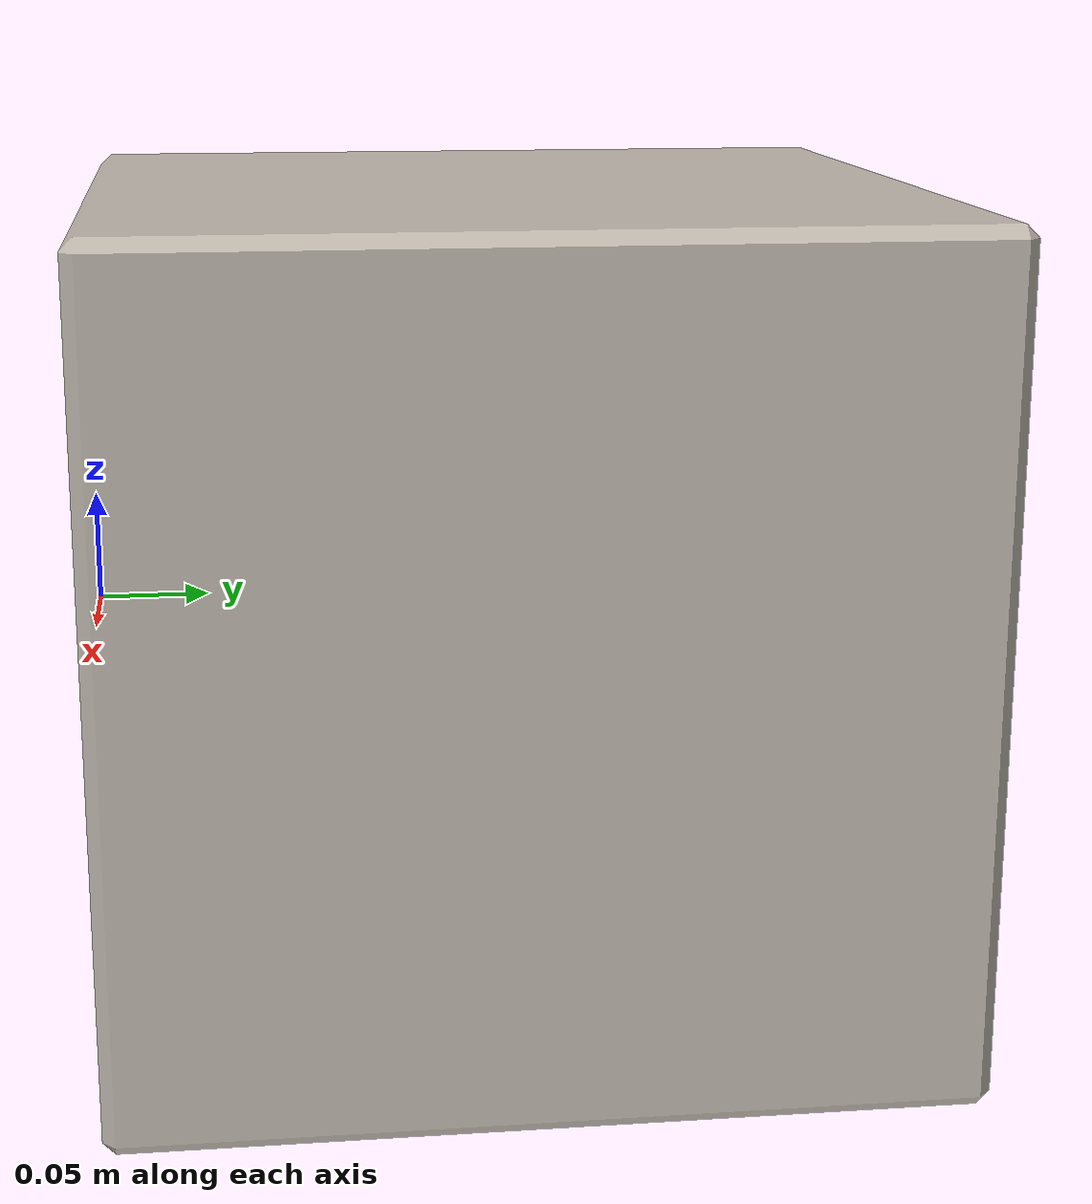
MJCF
<mujoco model="cardboard">
  <default>
    <default class="visual">
      <geom group="2" type="mesh" contype="0" conaffinity="0"/>
    </default>
    <default class="collision">
      <geom group="3" type="mesh"/>
    </default>
  </default>
  <asset>
    <texture name="cardboard_texture" type="2d" file="cardboard.png"/>
    <material name="cardboard_material" texture="cardboard_texture" specular="0.0" shininess="0.020000006" rgba="1.0 1.0 1.0 1.000000"/>
    <mesh file="cardboard.obj"/>
  </asset>
  <worldbody>
    <body name="cardboard">
      <geom material="cardboard_material" mesh="cardboard" class="visual"/>
      <geom mesh="cardboard" class="collision"/>
    </body>
  </worldbody>
</mujoco>
